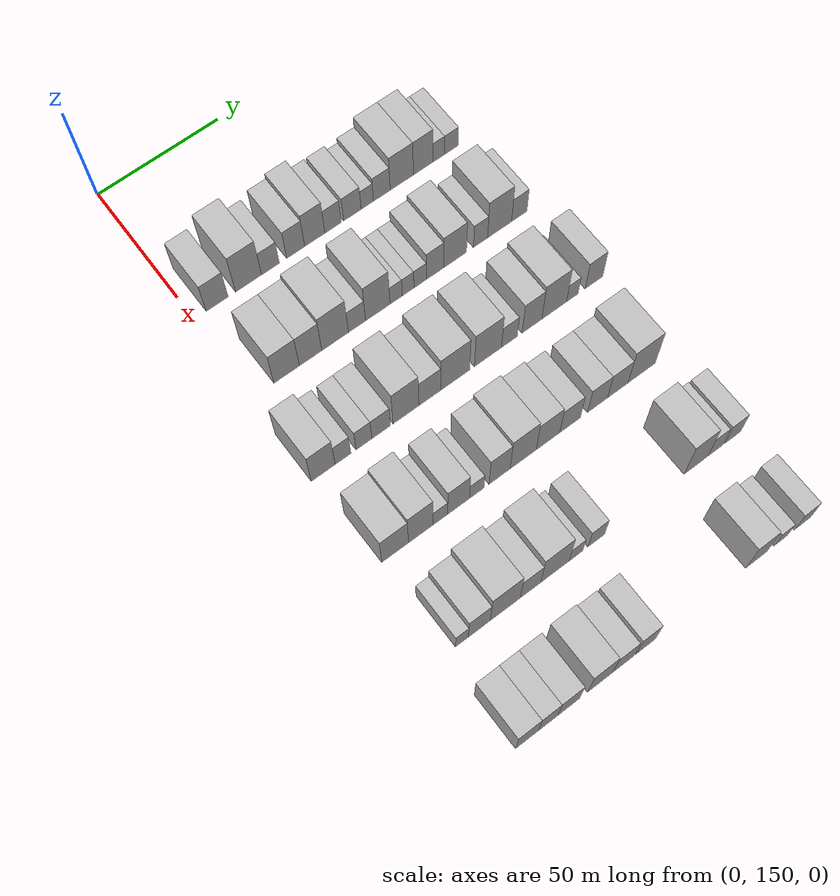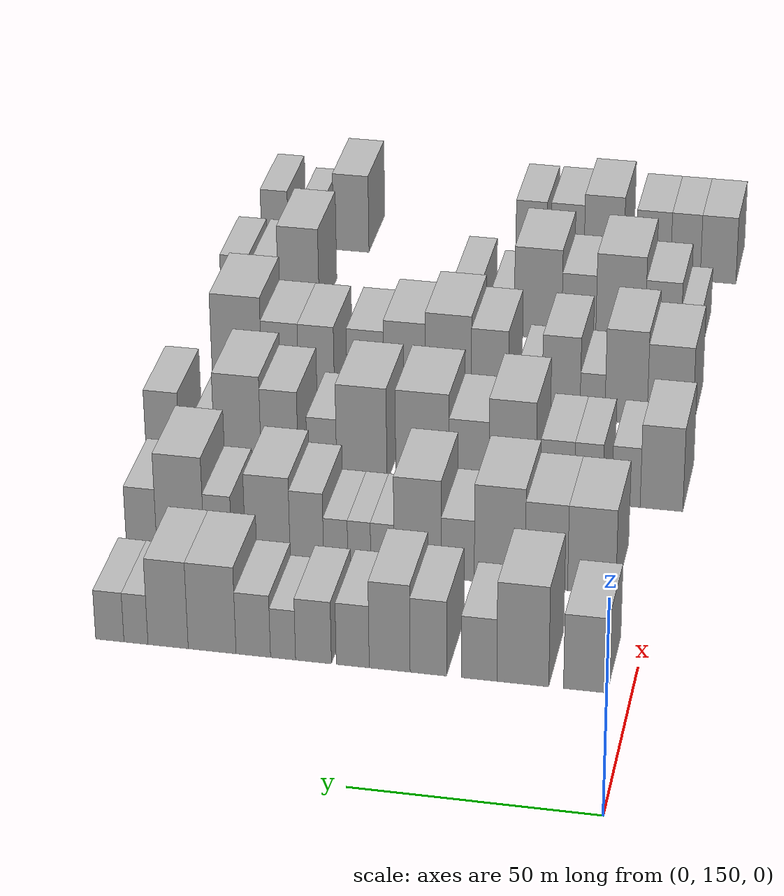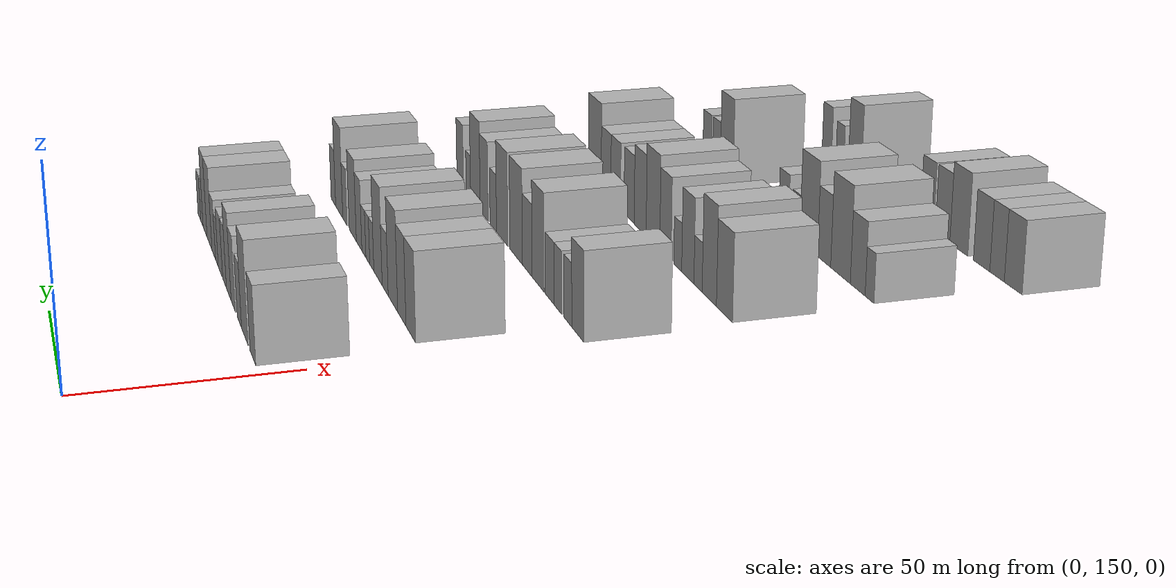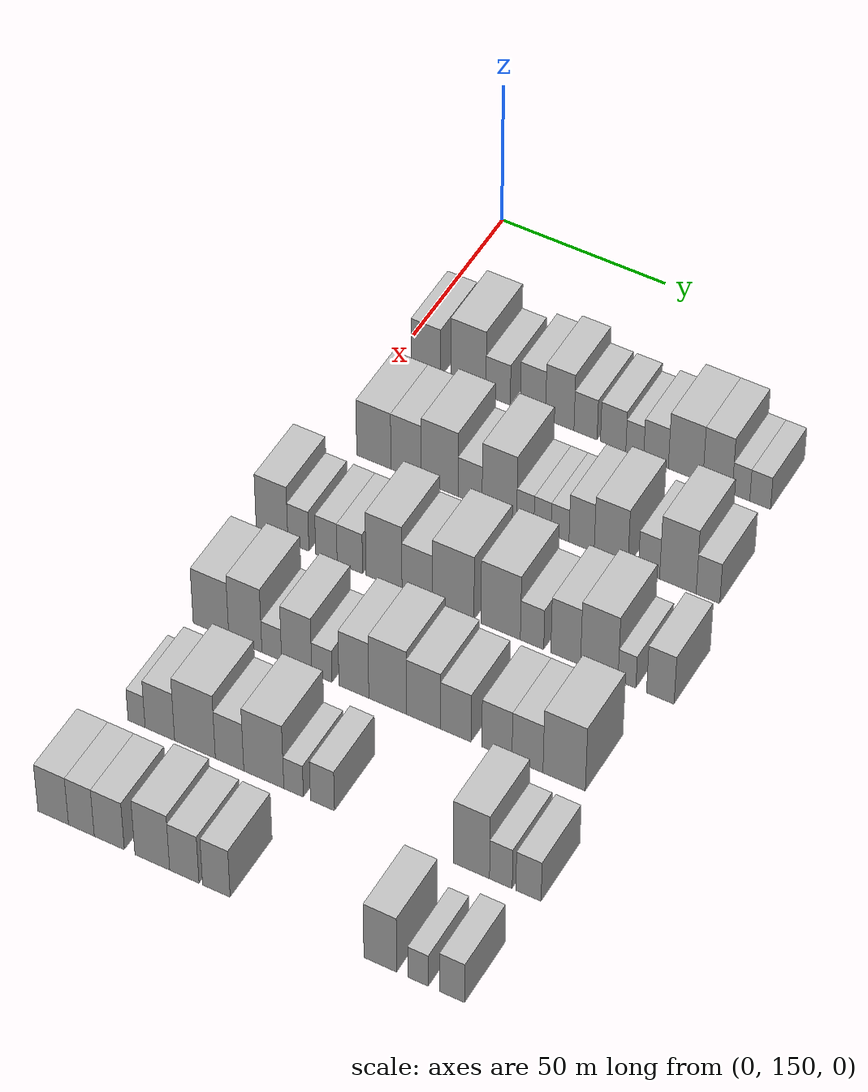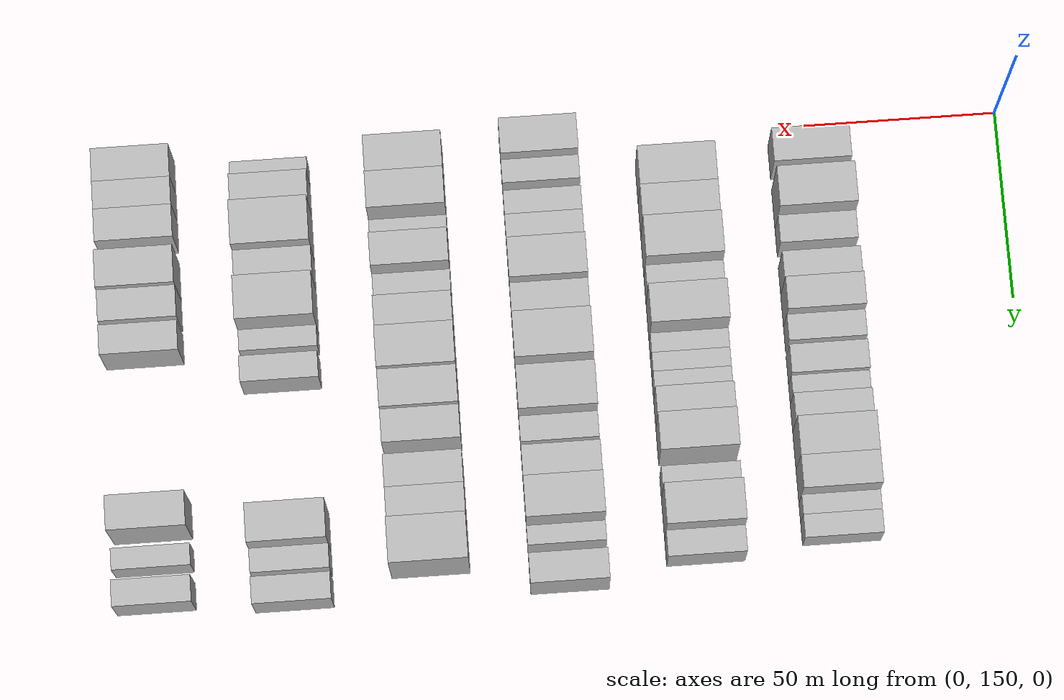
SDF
<sdf version="1.6">
 <world name="default">
  <model name="building_87">
   <static>1</static>
   <pose>50.0000 159.4352 0 0.000000 0.000000 0.000000</pose>
   <link name="link">
    <pose>0 0 9.00 0 0 0</pose>
    <collision name="collision"><geometry><box><size>20.0000 8.8607 18.0000</size></box></geometry></collision>
    <visual name="visual">
     <cast_shadows>0</cast_shadows>
     <geometry><box><size>20.0000 8.8607 18.0000</size></box></geometry>
     <material>
      <script>
       <uri>model://HANNAS_wall/materials/scripts</uri>
       <uri>model://HANNAS_wall/materials/textures</uri>
       <name>vrc/HANNAS_wall</name>
      </script>
     </material>
    </visual>
   </link>
  </model>
  <model name="building_88">
   <static>1</static>
   <pose>50.0000 172.1626 0 0.000000 0.000000 0.000000</pose>
   <link name="link">
    <pose>0 0 12.00 0 0 0</pose>
    <collision name="collision"><geometry><box><size>20.0000 10.5941 24.0000</size></box></geometry></collision>
    <visual name="visual">
     <cast_shadows>0</cast_shadows>
     <geometry><box><size>20.0000 10.5941 24.0000</size></box></geometry>
     <material>
      <script>
       <uri>model://HANNAS_wall/materials/scripts</uri>
       <uri>model://HANNAS_wall/materials/textures</uri>
       <name>vrc/HANNAS_wall</name>
      </script>
     </material>
    </visual>
   </link>
  </model>
  <model name="building_89">
   <static>1</static>
   <pose>50.0000 181.1078 0 0.000000 0.000000 0.000000</pose>
   <link name="link">
    <pose>0 0 7.50 0 0 0</pose>
    <collision name="collision"><geometry><box><size>20.0000 7.2964 15.0000</size></box></geometry></collision>
    <visual name="visual">
     <cast_shadows>0</cast_shadows>
     <geometry><box><size>20.0000 7.2964 15.0000</size></box></geometry>
     <material>
      <script>
       <uri>model://HANNAS_wall/materials/scripts</uri>
       <uri>model://HANNAS_wall/materials/textures</uri>
       <name>vrc/HANNAS_wall</name>
      </script>
     </material>
    </visual>
   </link>
  </model>
  <model name="building_90">
   <static>1</static>
   <pose>50.0000 191.5008 0 0.000000 0.000000 0.000000</pose>
   <link name="link">
    <pose>0 0 9.00 0 0 0</pose>
    <collision name="collision"><geometry><box><size>20.0000 7.4896 18.0000</size></box></geometry></collision>
    <visual name="visual">
     <cast_shadows>0</cast_shadows>
     <geometry><box><size>20.0000 7.4896 18.0000</size></box></geometry>
     <material>
      <script>
       <uri>model://HANNAS_wall/materials/scripts</uri>
       <uri>model://HANNAS_wall/materials/textures</uri>
       <name>vrc/HANNAS_wall</name>
      </script>
     </material>
    </visual>
   </link>
  </model>
  <model name="building_91">
   <static>1</static>
   <pose>50.0000 199.4698 0 0.000000 0.000000 0.000000</pose>
   <link name="link">
    <pose>0 0 10.50 0 0 0</pose>
    <collision name="collision"><geometry><box><size>20.0000 8.4484 21.0000</size></box></geometry></collision>
    <visual name="visual">
     <cast_shadows>0</cast_shadows>
     <geometry><box><size>20.0000 8.4484 21.0000</size></box></geometry>
     <material>
      <script>
       <uri>model://HANNAS_wall/materials/scripts</uri>
       <uri>model://HANNAS_wall/materials/textures</uri>
       <name>vrc/HANNAS_wall</name>
      </script>
     </material>
    </visual>
   </link>
  </model>
  <model name="building_92">
   <static>1</static>
   <pose>50.0000 207.1086 0 0.000000 0.000000 0.000000</pose>
   <link name="link">
    <pose>0 0 7.50 0 0 0</pose>
    <collision name="collision"><geometry><box><size>20.0000 6.8291 15.0000</size></box></geometry></collision>
    <visual name="visual">
     <cast_shadows>0</cast_shadows>
     <geometry><box><size>20.0000 6.8291 15.0000</size></box></geometry>
     <material>
      <script>
       <uri>model://HANNAS_wall/materials/scripts</uri>
       <uri>model://HANNAS_wall/materials/textures</uri>
       <name>vrc/HANNAS_wall</name>
      </script>
     </material>
    </visual>
   </link>
  </model>
  <model name="building_93">
   <static>1</static>
   <pose>50.0000 215.2515 0 0.000000 0.000000 0.000000</pose>
   <link name="link">
    <pose>0 0 7.50 0 0 0</pose>
    <collision name="collision"><geometry><box><size>20.0000 7.4567 15.0000</size></box></geometry></collision>
    <visual name="visual">
     <cast_shadows>0</cast_shadows>
     <geometry><box><size>20.0000 7.4567 15.0000</size></box></geometry>
     <material>
      <script>
       <uri>model://HANNAS_wall/materials/scripts</uri>
       <uri>model://HANNAS_wall/materials/textures</uri>
       <name>vrc/HANNAS_wall</name>
      </script>
     </material>
    </visual>
   </link>
  </model>
  <model name="building_94">
   <static>1</static>
   <pose>50.0000 221.5928 0 0.000000 0.000000 0.000000</pose>
   <link name="link">
    <pose>0 0 6.00 0 0 0</pose>
    <collision name="collision"><geometry><box><size>20.0000 5.2258 12.0000</size></box></geometry></collision>
    <visual name="visual">
     <cast_shadows>0</cast_shadows>
     <geometry><box><size>20.0000 5.2258 12.0000</size></box></geometry>
     <material>
      <script>
       <uri>model://HANNAS_wall/materials/scripts</uri>
       <uri>model://HANNAS_wall/materials/textures</uri>
       <name>vrc/HANNAS_wall</name>
      </script>
     </material>
    </visual>
   </link>
  </model>
  <model name="building_95">
   <static>1</static>
   <pose>50.0000 227.8062 0 0.000000 0.000000 0.000000</pose>
   <link name="link">
    <pose>0 0 7.50 0 0 0</pose>
    <collision name="collision"><geometry><box><size>20.0000 7.2010 15.0000</size></box></geometry></collision>
    <visual name="visual">
     <cast_shadows>0</cast_shadows>
     <geometry><box><size>20.0000 7.2010 15.0000</size></box></geometry>
     <material>
      <script>
       <uri>model://HANNAS_wall/materials/scripts</uri>
       <uri>model://HANNAS_wall/materials/textures</uri>
       <name>vrc/HANNAS_wall</name>
      </script>
     </material>
    </visual>
   </link>
  </model>
  <model name="building_96">
   <static>1</static>
   <pose>50.0000 236.4303 0 0.000000 0.000000 0.000000</pose>
   <link name="link">
    <pose>0 0 10.50 0 0 0</pose>
    <collision name="collision"><geometry><box><size>20.0000 10.0473 21.0000</size></box></geometry></collision>
    <visual name="visual">
     <cast_shadows>0</cast_shadows>
     <geometry><box><size>20.0000 10.0473 21.0000</size></box></geometry>
     <material>
      <script>
       <uri>model://HANNAS_wall/materials/scripts</uri>
       <uri>model://HANNAS_wall/materials/textures</uri>
       <name>vrc/HANNAS_wall</name>
      </script>
     </material>
    </visual>
   </link>
  </model>
  <model name="building_97">
   <static>1</static>
   <pose>50.0000 245.6946 0 0.000000 0.000000 0.000000</pose>
   <link name="link">
    <pose>0 0 10.50 0 0 0</pose>
    <collision name="collision"><geometry><box><size>20.0000 8.4812 21.0000</size></box></geometry></collision>
    <visual name="visual">
     <cast_shadows>0</cast_shadows>
     <geometry><box><size>20.0000 8.4812 21.0000</size></box></geometry>
     <material>
      <script>
       <uri>model://HANNAS_wall/materials/scripts</uri>
       <uri>model://HANNAS_wall/materials/textures</uri>
       <name>vrc/HANNAS_wall</name>
      </script>
     </material>
    </visual>
   </link>
  </model>
  <model name="building_98">
   <static>1</static>
   <pose>50.0000 252.4760 0 0.000000 0.000000 0.000000</pose>
   <link name="link">
    <pose>0 0 6.00 0 0 0</pose>
    <collision name="collision"><geometry><box><size>20.0000 5.0817 12.0000</size></box></geometry></collision>
    <visual name="visual">
     <cast_shadows>0</cast_shadows>
     <geometry><box><size>20.0000 5.0817 12.0000</size></box></geometry>
     <material>
      <script>
       <uri>model://HANNAS_wall/materials/scripts</uri>
       <uri>model://HANNAS_wall/materials/textures</uri>
       <name>vrc/HANNAS_wall</name>
      </script>
     </material>
    </visual>
   </link>
  </model>
  <model name="building_99">
   <static>1</static>
   <pose>50.0000 258.0063 0 0.000000 0.000000 0.000000</pose>
   <link name="link">
    <pose>0 0 6.00 0 0 0</pose>
    <collision name="collision"><geometry><box><size>20.0000 5.9790 12.0000</size></box></geometry></collision>
    <visual name="visual">
     <cast_shadows>0</cast_shadows>
     <geometry><box><size>20.0000 5.9790 12.0000</size></box></geometry>
     <material>
      <script>
       <uri>model://HANNAS_wall/materials/scripts</uri>
       <uri>model://HANNAS_wall/materials/textures</uri>
       <name>vrc/HANNAS_wall</name>
      </script>
     </material>
    </visual>
   </link>
  </model>
  <model name="building_216">
   <static>1</static>
   <pose>85.0000 163.2631 0 0.000000 0.000000 0.000000</pose>
   <link name="link">
    <pose>0 0 10.50 0 0 0</pose>
    <collision name="collision"><geometry><box><size>20.0000 10.2114 21.0000</size></box></geometry></collision>
    <visual name="visual">
     <cast_shadows>0</cast_shadows>
     <geometry><box><size>20.0000 10.2114 21.0000</size></box></geometry>
     <material>
      <script>
       <uri>model://HANNAS_wall/materials/scripts</uri>
       <uri>model://HANNAS_wall/materials/textures</uri>
       <name>vrc/HANNAS_wall</name>
      </script>
     </material>
    </visual>
   </link>
  </model>
  <model name="building_217">
   <static>1</static>
   <pose>85.0000 172.8873 0 0.000000 0.000000 0.000000</pose>
   <link name="link">
    <pose>0 0 10.50 0 0 0</pose>
    <collision name="collision"><geometry><box><size>20.0000 9.0369 21.0000</size></box></geometry></collision>
    <visual name="visual">
     <cast_shadows>0</cast_shadows>
     <geometry><box><size>20.0000 9.0369 21.0000</size></box></geometry>
     <material>
      <script>
       <uri>model://HANNAS_wall/materials/scripts</uri>
       <uri>model://HANNAS_wall/materials/textures</uri>
       <name>vrc/HANNAS_wall</name>
      </script>
     </material>
    </visual>
   </link>
  </model>
  <model name="building_218">
   <static>1</static>
   <pose>85.0000 182.8221 0 0.000000 0.000000 0.000000</pose>
   <link name="link">
    <pose>0 0 12.00 0 0 0</pose>
    <collision name="collision"><geometry><box><size>20.0000 10.8328 24.0000</size></box></geometry></collision>
    <visual name="visual">
     <cast_shadows>0</cast_shadows>
     <geometry><box><size>20.0000 10.8328 24.0000</size></box></geometry>
     <material>
      <script>
       <uri>model://HANNAS_wall/materials/scripts</uri>
       <uri>model://HANNAS_wall/materials/textures</uri>
       <name>vrc/HANNAS_wall</name>
      </script>
     </material>
    </visual>
   </link>
  </model>
  <model name="building_219">
   <static>1</static>
   <pose>85.0000 191.7666 0 0.000000 0.000000 0.000000</pose>
   <link name="link">
    <pose>0 0 7.50 0 0 0</pose>
    <collision name="collision"><geometry><box><size>20.0000 7.0562 15.0000</size></box></geometry></collision>
    <visual name="visual">
     <cast_shadows>0</cast_shadows>
     <geometry><box><size>20.0000 7.0562 15.0000</size></box></geometry>
     <material>
      <script>
       <uri>model://HANNAS_wall/materials/scripts</uri>
       <uri>model://HANNAS_wall/materials/textures</uri>
       <name>vrc/HANNAS_wall</name>
      </script>
     </material>
    </visual>
   </link>
  </model>
  <model name="building_220">
   <static>1</static>
   <pose>85.0000 200.3665 0 0.000000 0.000000 0.000000</pose>
   <link name="link">
    <pose>0 0 12.00 0 0 0</pose>
    <collision name="collision"><geometry><box><size>20.0000 10.1436 24.0000</size></box></geometry></collision>
    <visual name="visual">
     <cast_shadows>0</cast_shadows>
     <geometry><box><size>20.0000 10.1436 24.0000</size></box></geometry>
     <material>
      <script>
       <uri>model://HANNAS_wall/materials/scripts</uri>
       <uri>model://HANNAS_wall/materials/textures</uri>
       <name>vrc/HANNAS_wall</name>
      </script>
     </material>
    </visual>
   </link>
  </model>
  <model name="building_221">
   <static>1</static>
   <pose>85.0000 207.9617 0 0.000000 0.000000 0.000000</pose>
   <link name="link">
    <pose>0 0 6.00 0 0 0</pose>
    <collision name="collision"><geometry><box><size>20.0000 5.0468 12.0000</size></box></geometry></collision>
    <visual name="visual">
     <cast_shadows>0</cast_shadows>
     <geometry><box><size>20.0000 5.0468 12.0000</size></box></geometry>
     <material>
      <script>
       <uri>model://HANNAS_wall/materials/scripts</uri>
       <uri>model://HANNAS_wall/materials/textures</uri>
       <name>vrc/HANNAS_wall</name>
      </script>
     </material>
    </visual>
   </link>
  </model>
  <model name="building_222">
   <static>1</static>
   <pose>85.0000 212.9592 0 0.000000 0.000000 0.000000</pose>
   <link name="link">
    <pose>0 0 6.00 0 0 0</pose>
    <collision name="collision"><geometry><box><size>20.0000 4.9481 12.0000</size></box></geometry></collision>
    <visual name="visual">
     <cast_shadows>0</cast_shadows>
     <geometry><box><size>20.0000 4.9481 12.0000</size></box></geometry>
     <material>
      <script>
       <uri>model://HANNAS_wall/materials/scripts</uri>
       <uri>model://HANNAS_wall/materials/textures</uri>
       <name>vrc/HANNAS_wall</name>
      </script>
     </material>
    </visual>
   </link>
  </model>
  <model name="building_223">
   <static>1</static>
   <pose>85.0000 218.0493 0 0.000000 0.000000 0.000000</pose>
   <link name="link">
    <pose>0 0 6.00 0 0 0</pose>
    <collision name="collision"><geometry><box><size>20.0000 5.2320 12.0000</size></box></geometry></collision>
    <visual name="visual">
     <cast_shadows>0</cast_shadows>
     <geometry><box><size>20.0000 5.2320 12.0000</size></box></geometry>
     <material>
      <script>
       <uri>model://HANNAS_wall/materials/scripts</uri>
       <uri>model://HANNAS_wall/materials/textures</uri>
       <name>vrc/HANNAS_wall</name>
      </script>
     </material>
    </visual>
   </link>
  </model>
  <model name="building_224">
   <static>1</static>
   <pose>85.0000 224.3019 0 0.000000 0.000000 0.000000</pose>
   <link name="link">
    <pose>0 0 9.00 0 0 0</pose>
    <collision name="collision"><geometry><box><size>20.0000 7.2733 18.0000</size></box></geometry></collision>
    <visual name="visual">
     <cast_shadows>0</cast_shadows>
     <geometry><box><size>20.0000 7.2733 18.0000</size></box></geometry>
     <material>
      <script>
       <uri>model://HANNAS_wall/materials/scripts</uri>
       <uri>model://HANNAS_wall/materials/textures</uri>
       <name>vrc/HANNAS_wall</name>
      </script>
     </material>
    </visual>
   </link>
  </model>
  <model name="building_225">
   <static>1</static>
   <pose>85.0000 232.8008 0 0.000000 0.000000 0.000000</pose>
   <link name="link">
    <pose>0 0 10.50 0 0 0</pose>
    <collision name="collision"><geometry><box><size>20.0000 9.7244 21.0000</size></box></geometry></collision>
    <visual name="visual">
     <cast_shadows>0</cast_shadows>
     <geometry><box><size>20.0000 9.7244 21.0000</size></box></geometry>
     <material>
      <script>
       <uri>model://HANNAS_wall/materials/scripts</uri>
       <uri>model://HANNAS_wall/materials/textures</uri>
       <name>vrc/HANNAS_wall</name>
      </script>
     </material>
    </visual>
   </link>
  </model>
  <model name="building_226">
   <static>1</static>
   <pose>85.0000 243.6888 0 0.000000 0.000000 0.000000</pose>
   <link name="link">
    <pose>0 0 7.50 0 0 0</pose>
    <collision name="collision"><geometry><box><size>20.0000 6.0515 15.0000</size></box></geometry></collision>
    <visual name="visual">
     <cast_shadows>0</cast_shadows>
     <geometry><box><size>20.0000 6.0515 15.0000</size></box></geometry>
     <material>
      <script>
       <uri>model://HANNAS_wall/materials/scripts</uri>
       <uri>model://HANNAS_wall/materials/textures</uri>
       <name>vrc/HANNAS_wall</name>
      </script>
     </material>
    </visual>
   </link>
  </model>
  <model name="building_227">
   <static>1</static>
   <pose>85.0000 251.9386 0 0.000000 0.000000 0.000000</pose>
   <link name="link">
    <pose>0 0 12.00 0 0 0</pose>
    <collision name="collision"><geometry><box><size>20.0000 10.4483 24.0000</size></box></geometry></collision>
    <visual name="visual">
     <cast_shadows>0</cast_shadows>
     <geometry><box><size>20.0000 10.4483 24.0000</size></box></geometry>
     <material>
      <script>
       <uri>model://HANNAS_wall/materials/scripts</uri>
       <uri>model://HANNAS_wall/materials/textures</uri>
       <name>vrc/HANNAS_wall</name>
      </script>
     </material>
    </visual>
   </link>
  </model>
  <model name="building_228">
   <static>1</static>
   <pose>85.0000 260.5170 0 0.000000 0.000000 0.000000</pose>
   <link name="link">
    <pose>0 0 7.50 0 0 0</pose>
    <collision name="collision"><geometry><box><size>20.0000 6.7085 15.0000</size></box></geometry></collision>
    <visual name="visual">
     <cast_shadows>0</cast_shadows>
     <geometry><box><size>20.0000 6.7085 15.0000</size></box></geometry>
     <material>
      <script>
       <uri>model://HANNAS_wall/materials/scripts</uri>
       <uri>model://HANNAS_wall/materials/textures</uri>
       <name>vrc/HANNAS_wall</name>
      </script>
     </material>
    </visual>
   </link>
  </model>
  <model name="building_347">
   <static>1</static>
   <pose>120.0000 153.0045 0 0.000000 0.000000 0.000000</pose>
   <link name="link">
    <pose>0 0 10.50 0 0 0</pose>
    <collision name="collision"><geometry><box><size>20.0000 9.3803 21.0000</size></box></geometry></collision>
    <visual name="visual">
     <cast_shadows>0</cast_shadows>
     <geometry><box><size>20.0000 9.3803 21.0000</size></box></geometry>
     <material>
      <script>
       <uri>model://HANNAS_wall/materials/scripts</uri>
       <uri>model://HANNAS_wall/materials/textures</uri>
       <name>vrc/HANNAS_wall</name>
      </script>
     </material>
    </visual>
   </link>
  </model>
  <model name="building_348">
   <static>1</static>
   <pose>120.0000 160.8081 0 0.000000 0.000000 0.000000</pose>
   <link name="link">
    <pose>0 0 7.50 0 0 0</pose>
    <collision name="collision"><geometry><box><size>20.0000 6.2269 15.0000</size></box></geometry></collision>
    <visual name="visual">
     <cast_shadows>0</cast_shadows>
     <geometry><box><size>20.0000 6.2269 15.0000</size></box></geometry>
     <material>
      <script>
       <uri>model://HANNAS_wall/materials/scripts</uri>
       <uri>model://HANNAS_wall/materials/textures</uri>
       <name>vrc/HANNAS_wall</name>
      </script>
     </material>
    </visual>
   </link>
  </model>
  <model name="building_349">
   <static>1</static>
   <pose>120.0000 169.0744 0 0.000000 0.000000 0.000000</pose>
   <link name="link">
    <pose>0 0 7.50 0 0 0</pose>
    <collision name="collision"><geometry><box><size>20.0000 6.3058 15.0000</size></box></geometry></collision>
    <visual name="visual">
     <cast_shadows>0</cast_shadows>
     <geometry><box><size>20.0000 6.3058 15.0000</size></box></geometry>
     <material>
      <script>
       <uri>model://HANNAS_wall/materials/scripts</uri>
       <uri>model://HANNAS_wall/materials/textures</uri>
       <name>vrc/HANNAS_wall</name>
      </script>
     </material>
    </visual>
   </link>
  </model>
  <model name="building_350">
   <static>1</static>
   <pose>120.0000 175.9626 0 0.000000 0.000000 0.000000</pose>
   <link name="link">
    <pose>0 0 7.50 0 0 0</pose>
    <collision name="collision"><geometry><box><size>20.0000 7.4707 15.0000</size></box></geometry></collision>
    <visual name="visual">
     <cast_shadows>0</cast_shadows>
     <geometry><box><size>20.0000 7.4707 15.0000</size></box></geometry>
     <material>
      <script>
       <uri>model://HANNAS_wall/materials/scripts</uri>
       <uri>model://HANNAS_wall/materials/textures</uri>
       <name>vrc/HANNAS_wall</name>
      </script>
     </material>
    </visual>
   </link>
  </model>
  <model name="building_351">
   <static>1</static>
   <pose>120.0000 185.9377 0 0.000000 0.000000 0.000000</pose>
   <link name="link">
    <pose>0 0 12.00 0 0 0</pose>
    <collision name="collision"><geometry><box><size>20.0000 10.4794 24.0000</size></box></geometry></collision>
    <visual name="visual">
     <cast_shadows>0</cast_shadows>
     <geometry><box><size>20.0000 10.4794 24.0000</size></box></geometry>
     <material>
      <script>
       <uri>model://HANNAS_wall/materials/scripts</uri>
       <uri>model://HANNAS_wall/materials/textures</uri>
       <name>vrc/HANNAS_wall</name>
      </script>
     </material>
    </visual>
   </link>
  </model>
  <model name="building_352">
   <static>1</static>
   <pose>120.0000 195.6011 0 0.000000 0.000000 0.000000</pose>
   <link name="link">
    <pose>0 0 9.00 0 0 0</pose>
    <collision name="collision"><geometry><box><size>20.0000 8.8476 18.0000</size></box></geometry></collision>
    <visual name="visual">
     <cast_shadows>0</cast_shadows>
     <geometry><box><size>20.0000 8.8476 18.0000</size></box></geometry>
     <material>
      <script>
       <uri>model://HANNAS_wall/materials/scripts</uri>
       <uri>model://HANNAS_wall/materials/textures</uri>
       <name>vrc/HANNAS_wall</name>
      </script>
     </material>
    </visual>
   </link>
  </model>
  <model name="building_353">
   <static>1</static>
   <pose>120.0000 205.9927 0 0.000000 0.000000 0.000000</pose>
   <link name="link">
    <pose>0 0 12.00 0 0 0</pose>
    <collision name="collision"><geometry><box><size>20.0000 11.9356 24.0000</size></box></geometry></collision>
    <visual name="visual">
     <cast_shadows>0</cast_shadows>
     <geometry><box><size>20.0000 11.9356 24.0000</size></box></geometry>
     <material>
      <script>
       <uri>model://HANNAS_wall/materials/scripts</uri>
       <uri>model://HANNAS_wall/materials/textures</uri>
       <name>vrc/HANNAS_wall</name>
      </script>
     </material>
    </visual>
   </link>
  </model>
  <model name="building_354">
   <static>1</static>
   <pose>120.0000 219.6166 0 0.000000 0.000000 0.000000</pose>
   <link name="link">
    <pose>0 0 12.00 0 0 0</pose>
    <collision name="collision"><geometry><box><size>20.0000 11.3123 24.0000</size></box></geometry></collision>
    <visual name="visual">
     <cast_shadows>0</cast_shadows>
     <geometry><box><size>20.0000 11.3123 24.0000</size></box></geometry>
     <material>
      <script>
       <uri>model://HANNAS_wall/materials/scripts</uri>
       <uri>model://HANNAS_wall/materials/textures</uri>
       <name>vrc/HANNAS_wall</name>
      </script>
     </material>
    </visual>
   </link>
  </model>
  <model name="building_355">
   <static>1</static>
   <pose>120.0000 228.6077 0 0.000000 0.000000 0.000000</pose>
   <link name="link">
    <pose>0 0 7.50 0 0 0</pose>
    <collision name="collision"><geometry><box><size>20.0000 6.6699 15.0000</size></box></geometry></collision>
    <visual name="visual">
     <cast_shadows>0</cast_shadows>
     <geometry><box><size>20.0000 6.6699 15.0000</size></box></geometry>
     <material>
      <script>
       <uri>model://HANNAS_wall/materials/scripts</uri>
       <uri>model://HANNAS_wall/materials/textures</uri>
       <name>vrc/HANNAS_wall</name>
      </script>
     </material>
    </visual>
   </link>
  </model>
  <model name="building_356">
   <static>1</static>
   <pose>120.0000 238.1474 0 0.000000 0.000000 0.000000</pose>
   <link name="link">
    <pose>0 0 10.50 0 0 0</pose>
    <collision name="collision"><geometry><box><size>20.0000 8.4095 21.0000</size></box></geometry></collision>
    <visual name="visual">
     <cast_shadows>0</cast_shadows>
     <geometry><box><size>20.0000 8.4095 21.0000</size></box></geometry>
     <material>
      <script>
       <uri>model://HANNAS_wall/materials/scripts</uri>
       <uri>model://HANNAS_wall/materials/textures</uri>
       <name>vrc/HANNAS_wall</name>
      </script>
     </material>
    </visual>
   </link>
  </model>
  <model name="building_357">
   <static>1</static>
   <pose>120.0000 247.6490 0 0.000000 0.000000 0.000000</pose>
   <link name="link">
    <pose>0 0 12.00 0 0 0</pose>
    <collision name="collision"><geometry><box><size>20.0000 10.5937 24.0000</size></box></geometry></collision>
    <visual name="visual">
     <cast_shadows>0</cast_shadows>
     <geometry><box><size>20.0000 10.5937 24.0000</size></box></geometry>
     <material>
      <script>
       <uri>model://HANNAS_wall/materials/scripts</uri>
       <uri>model://HANNAS_wall/materials/textures</uri>
       <name>vrc/HANNAS_wall</name>
      </script>
     </material>
    </visual>
   </link>
  </model>
  <model name="building_358">
   <static>1</static>
   <pose>120.0000 255.4540 0 0.000000 0.000000 0.000000</pose>
   <link name="link">
    <pose>0 0 6.00 0 0 0</pose>
    <collision name="collision"><geometry><box><size>20.0000 5.0163 12.0000</size></box></geometry></collision>
    <visual name="visual">
     <cast_shadows>0</cast_shadows>
     <geometry><box><size>20.0000 5.0163 12.0000</size></box></geometry>
     <material>
      <script>
       <uri>model://HANNAS_wall/materials/scripts</uri>
       <uri>model://HANNAS_wall/materials/textures</uri>
       <name>vrc/HANNAS_wall</name>
      </script>
     </material>
    </visual>
   </link>
  </model>
  <model name="building_359">
   <static>1</static>
   <pose>120.0000 264.8081 0 0.000000 0.000000 0.000000</pose>
   <link name="link">
    <pose>0 0 9.00 0 0 0</pose>
    <collision name="collision"><geometry><box><size>20.0000 7.6920 18.0000</size></box></geometry></collision>
    <visual name="visual">
     <cast_shadows>0</cast_shadows>
     <geometry><box><size>20.0000 7.6920 18.0000</size></box></geometry>
     <material>
      <script>
       <uri>model://HANNAS_wall/materials/scripts</uri>
       <uri>model://HANNAS_wall/materials/textures</uri>
       <name>vrc/HANNAS_wall</name>
      </script>
     </material>
    </visual>
   </link>
  </model>
  <model name="building_479">
   <static>1</static>
   <pose>155.0000 155.5873 0 0.000000 0.000000 0.000000</pose>
   <link name="link">
    <pose>0 0 10.50 0 0 0</pose>
    <collision name="collision"><geometry><box><size>20.0000 10.4315 21.0000</size></box></geometry></collision>
    <visual name="visual">
     <cast_shadows>0</cast_shadows>
     <geometry><box><size>20.0000 10.4315 21.0000</size></box></geometry>
     <material>
      <script>
       <uri>model://HANNAS_wall/materials/scripts</uri>
       <uri>model://HANNAS_wall/materials/textures</uri>
       <name>vrc/HANNAS_wall</name>
      </script>
     </material>
    </visual>
   </link>
  </model>
  <model name="building_480">
   <static>1</static>
   <pose>155.0000 165.6293 0 0.000000 0.000000 0.000000</pose>
   <link name="link">
    <pose>0 0 12.00 0 0 0</pose>
    <collision name="collision"><geometry><box><size>20.0000 9.6525 24.0000</size></box></geometry></collision>
    <visual name="visual">
     <cast_shadows>0</cast_shadows>
     <geometry><box><size>20.0000 9.6525 24.0000</size></box></geometry>
     <material>
      <script>
       <uri>model://HANNAS_wall/materials/scripts</uri>
       <uri>model://HANNAS_wall/materials/textures</uri>
       <name>vrc/HANNAS_wall</name>
      </script>
     </material>
    </visual>
   </link>
  </model>
  <model name="building_481">
   <static>1</static>
   <pose>155.0000 173.3126 0 0.000000 0.000000 0.000000</pose>
   <link name="link">
    <pose>0 0 6.00 0 0 0</pose>
    <collision name="collision"><geometry><box><size>20.0000 5.7141 12.0000</size></box></geometry></collision>
    <visual name="visual">
     <cast_shadows>0</cast_shadows>
     <geometry><box><size>20.0000 5.7141 12.0000</size></box></geometry>
     <material>
      <script>
       <uri>model://HANNAS_wall/materials/scripts</uri>
       <uri>model://HANNAS_wall/materials/textures</uri>
       <name>vrc/HANNAS_wall</name>
      </script>
     </material>
    </visual>
   </link>
  </model>
  <model name="building_482">
   <static>1</static>
   <pose>155.0000 180.5376 0 0.000000 0.000000 0.000000</pose>
   <link name="link">
    <pose>0 0 10.50 0 0 0</pose>
    <collision name="collision"><geometry><box><size>20.0000 8.7359 21.0000</size></box></geometry></collision>
    <visual name="visual">
     <cast_shadows>0</cast_shadows>
     <geometry><box><size>20.0000 8.7359 21.0000</size></box></geometry>
     <material>
      <script>
       <uri>model://HANNAS_wall/materials/scripts</uri>
       <uri>model://HANNAS_wall/materials/textures</uri>
       <name>vrc/HANNAS_wall</name>
      </script>
     </material>
    </visual>
   </link>
  </model>
  <model name="building_483">
   <static>1</static>
   <pose>155.0000 187.8152 0 0.000000 0.000000 0.000000</pose>
   <link name="link">
    <pose>0 0 6.00 0 0 0</pose>
    <collision name="collision"><geometry><box><size>20.0000 5.8194 12.0000</size></box></geometry></collision>
    <visual name="visual">
     <cast_shadows>0</cast_shadows>
     <geometry><box><size>20.0000 5.8194 12.0000</size></box></geometry>
     <material>
      <script>
       <uri>model://HANNAS_wall/materials/scripts</uri>
       <uri>model://HANNAS_wall/materials/textures</uri>
       <name>vrc/HANNAS_wall</name>
      </script>
     </material>
    </visual>
   </link>
  </model>
  <model name="building_484">
   <static>1</static>
   <pose>155.0000 196.9917 0 0.000000 0.000000 0.000000</pose>
   <link name="link">
    <pose>0 0 10.50 0 0 0</pose>
    <collision name="collision"><geometry><box><size>20.0000 8.5335 21.0000</size></box></geometry></collision>
    <visual name="visual">
     <cast_shadows>0</cast_shadows>
     <geometry><box><size>20.0000 8.5335 21.0000</size></box></geometry>
     <material>
      <script>
       <uri>model://HANNAS_wall/materials/scripts</uri>
       <uri>model://HANNAS_wall/materials/textures</uri>
       <name>vrc/HANNAS_wall</name>
      </script>
     </material>
    </visual>
   </link>
  </model>
  <model name="building_485">
   <static>1</static>
   <pose>155.0000 206.6152 0 0.000000 0.000000 0.000000</pose>
   <link name="link">
    <pose>0 0 12.00 0 0 0</pose>
    <collision name="collision"><geometry><box><size>20.0000 10.7136 24.0000</size></box></geometry></collision>
    <visual name="visual">
     <cast_shadows>0</cast_shadows>
     <geometry><box><size>20.0000 10.7136 24.0000</size></box></geometry>
     <material>
      <script>
       <uri>model://HANNAS_wall/materials/scripts</uri>
       <uri>model://HANNAS_wall/materials/textures</uri>
       <name>vrc/HANNAS_wall</name>
      </script>
     </material>
    </visual>
   </link>
  </model>
  <model name="building_486">
   <static>1</static>
   <pose>155.0000 216.8168 0 0.000000 0.000000 0.000000</pose>
   <link name="link">
    <pose>0 0 10.50 0 0 0</pose>
    <collision name="collision"><geometry><box><size>20.0000 9.6896 21.0000</size></box></geometry></collision>
    <visual name="visual">
     <cast_shadows>0</cast_shadows>
     <geometry><box><size>20.0000 9.6896 21.0000</size></box></geometry>
     <material>
      <script>
       <uri>model://HANNAS_wall/materials/scripts</uri>
       <uri>model://HANNAS_wall/materials/textures</uri>
       <name>vrc/HANNAS_wall</name>
      </script>
     </material>
    </visual>
   </link>
  </model>
  <model name="building_487">
   <static>1</static>
   <pose>155.0000 225.9550 0 0.000000 0.000000 0.000000</pose>
   <link name="link">
    <pose>0 0 9.00 0 0 0</pose>
    <collision name="collision"><geometry><box><size>20.0000 8.5868 18.0000</size></box></geometry></collision>
    <visual name="visual">
     <cast_shadows>0</cast_shadows>
     <geometry><box><size>20.0000 8.5868 18.0000</size></box></geometry>
     <material>
      <script>
       <uri>model://HANNAS_wall/materials/scripts</uri>
       <uri>model://HANNAS_wall/materials/textures</uri>
       <name>vrc/HANNAS_wall</name>
      </script>
     </material>
    </visual>
   </link>
  </model>
  <model name="building_488">
   <static>1</static>
   <pose>155.0000 237.4658 0 0.000000 0.000000 0.000000</pose>
   <link name="link">
    <pose>0 0 9.00 0 0 0</pose>
    <collision name="collision"><geometry><box><size>20.0000 8.4349 18.0000</size></box></geometry></collision>
    <visual name="visual">
     <cast_shadows>0</cast_shadows>
     <geometry><box><size>20.0000 8.4349 18.0000</size></box></geometry>
     <material>
      <script>
       <uri>model://HANNAS_wall/materials/scripts</uri>
       <uri>model://HANNAS_wall/materials/textures</uri>
       <name>vrc/HANNAS_wall</name>
      </script>
     </material>
    </visual>
   </link>
  </model>
  <model name="building_489">
   <static>1</static>
   <pose>155.0000 246.0072 0 0.000000 0.000000 0.000000</pose>
   <link name="link">
    <pose>0 0 9.00 0 0 0</pose>
    <collision name="collision"><geometry><box><size>20.0000 8.6479 18.0000</size></box></geometry></collision>
    <visual name="visual">
     <cast_shadows>0</cast_shadows>
     <geometry><box><size>20.0000 8.6479 18.0000</size></box></geometry>
     <material>
      <script>
       <uri>model://HANNAS_wall/materials/scripts</uri>
       <uri>model://HANNAS_wall/materials/textures</uri>
       <name>vrc/HANNAS_wall</name>
      </script>
     </material>
    </visual>
   </link>
  </model>
  <model name="building_490">
   <static>1</static>
   <pose>155.0000 256.2039 0 0.000000 0.000000 0.000000</pose>
   <link name="link">
    <pose>0 0 12.00 0 0 0</pose>
    <collision name="collision"><geometry><box><size>20.0000 11.7455 24.0000</size></box></geometry></collision>
    <visual name="visual">
     <cast_shadows>0</cast_shadows>
     <geometry><box><size>20.0000 11.7455 24.0000</size></box></geometry>
     <material>
      <script>
       <uri>model://HANNAS_wall/materials/scripts</uri>
       <uri>model://HANNAS_wall/materials/textures</uri>
       <name>vrc/HANNAS_wall</name>
      </script>
     </material>
    </visual>
   </link>
  </model>
  <model name="building_608">
   <static>1</static>
   <pose>190.0000 154.9593 0 0.000000 0.000000 0.000000</pose>
   <link name="link">
    <pose>0 0 6.00 0 0 0</pose>
    <collision name="collision"><geometry><box><size>20.0000 4.9291 12.0000</size></box></geometry></collision>
    <visual name="visual">
     <cast_shadows>0</cast_shadows>
     <geometry><box><size>20.0000 4.9291 12.0000</size></box></geometry>
     <material>
      <script>
       <uri>model://HANNAS_wall/materials/scripts</uri>
       <uri>model://HANNAS_wall/materials/textures</uri>
       <name>vrc/HANNAS_wall</name>
      </script>
     </material>
    </visual>
   </link>
  </model>
  <model name="building_609">
   <static>1</static>
   <pose>190.0000 161.6840 0 0.000000 0.000000 0.000000</pose>
   <link name="link">
    <pose>0 0 9.00 0 0 0</pose>
    <collision name="collision"><geometry><box><size>20.0000 8.5203 18.0000</size></box></geometry></collision>
    <visual name="visual">
     <cast_shadows>0</cast_shadows>
     <geometry><box><size>20.0000 8.5203 18.0000</size></box></geometry>
     <material>
      <script>
       <uri>model://HANNAS_wall/materials/scripts</uri>
       <uri>model://HANNAS_wall/materials/textures</uri>
       <name>vrc/HANNAS_wall</name>
      </script>
     </material>
    </visual>
   </link>
  </model>
  <model name="building_610">
   <static>1</static>
   <pose>190.0000 171.7864 0 0.000000 0.000000 0.000000</pose>
   <link name="link">
    <pose>0 0 12.00 0 0 0</pose>
    <collision name="collision"><geometry><box><size>20.0000 11.6845 24.0000</size></box></geometry></collision>
    <visual name="visual">
     <cast_shadows>0</cast_shadows>
     <geometry><box><size>20.0000 11.6845 24.0000</size></box></geometry>
     <material>
      <script>
       <uri>model://HANNAS_wall/materials/scripts</uri>
       <uri>model://HANNAS_wall/materials/textures</uri>
       <name>vrc/HANNAS_wall</name>
      </script>
     </material>
    </visual>
   </link>
  </model>
  <model name="building_611">
   <static>1</static>
   <pose>190.0000 181.6947 0 0.000000 0.000000 0.000000</pose>
   <link name="link">
    <pose>0 0 9.00 0 0 0</pose>
    <collision name="collision"><geometry><box><size>20.0000 8.1322 18.0000</size></box></geometry></collision>
    <visual name="visual">
     <cast_shadows>0</cast_shadows>
     <geometry><box><size>20.0000 8.1322 18.0000</size></box></geometry>
     <material>
      <script>
       <uri>model://HANNAS_wall/materials/scripts</uri>
       <uri>model://HANNAS_wall/materials/textures</uri>
       <name>vrc/HANNAS_wall</name>
      </script>
     </material>
    </visual>
   </link>
  </model>
  <model name="building_612">
   <static>1</static>
   <pose>190.0000 191.4419 0 0.000000 0.000000 0.000000</pose>
   <link name="link">
    <pose>0 0 12.00 0 0 0</pose>
    <collision name="collision"><geometry><box><size>20.0000 11.3621 24.0000</size></box></geometry></collision>
    <visual name="visual">
     <cast_shadows>0</cast_shadows>
     <geometry><box><size>20.0000 11.3621 24.0000</size></box></geometry>
     <material>
      <script>
       <uri>model://HANNAS_wall/materials/scripts</uri>
       <uri>model://HANNAS_wall/materials/textures</uri>
       <name>vrc/HANNAS_wall</name>
      </script>
     </material>
    </visual>
   </link>
  </model>
  <model name="building_613">
   <static>1</static>
   <pose>190.0000 199.8836 0 0.000000 0.000000 0.000000</pose>
   <link name="link">
    <pose>0 0 6.00 0 0 0</pose>
    <collision name="collision"><geometry><box><size>20.0000 5.5212 12.0000</size></box></geometry></collision>
    <visual name="visual">
     <cast_shadows>0</cast_shadows>
     <geometry><box><size>20.0000 5.5212 12.0000</size></box></geometry>
     <material>
      <script>
       <uri>model://HANNAS_wall/materials/scripts</uri>
       <uri>model://HANNAS_wall/materials/textures</uri>
       <name>vrc/HANNAS_wall</name>
      </script>
     </material>
    </visual>
   </link>
  </model>
  <model name="building_614">
   <static>1</static>
   <pose>190.0000 208.0310 0 0.000000 0.000000 0.000000</pose>
   <link name="link">
    <pose>0 0 7.50 0 0 0</pose>
    <collision name="collision"><geometry><box><size>20.0000 6.7738 15.0000</size></box></geometry></collision>
    <visual name="visual">
     <cast_shadows>0</cast_shadows>
     <geometry><box><size>20.0000 6.7738 15.0000</size></box></geometry>
     <material>
      <script>
       <uri>model://HANNAS_wall/materials/scripts</uri>
       <uri>model://HANNAS_wall/materials/textures</uri>
       <name>vrc/HANNAS_wall</name>
      </script>
     </material>
    </visual>
   </link>
  </model>
  <model name="building_615">
   <static>1</static>
   <pose>190.0000 249.3814 0 0.000000 0.000000 0.000000</pose>
   <link name="link">
    <pose>0 0 12.00 0 0 0</pose>
    <collision name="collision"><geometry><box><size>20.0000 9.9757 24.0000</size></box></geometry></collision>
    <visual name="visual">
     <cast_shadows>0</cast_shadows>
     <geometry><box><size>20.0000 9.9757 24.0000</size></box></geometry>
     <material>
      <script>
       <uri>model://HANNAS_wall/materials/scripts</uri>
       <uri>model://HANNAS_wall/materials/textures</uri>
       <name>vrc/HANNAS_wall</name>
      </script>
     </material>
    </visual>
   </link>
  </model>
  <model name="building_616">
   <static>1</static>
   <pose>190.0000 257.4687 0 0.000000 0.000000 0.000000</pose>
   <link name="link">
    <pose>0 0 7.50 0 0 0</pose>
    <collision name="collision"><geometry><box><size>20.0000 6.1990 15.0000</size></box></geometry></collision>
    <visual name="visual">
     <cast_shadows>0</cast_shadows>
     <geometry><box><size>20.0000 6.1990 15.0000</size></box></geometry>
     <material>
      <script>
       <uri>model://HANNAS_wall/materials/scripts</uri>
       <uri>model://HANNAS_wall/materials/textures</uri>
       <name>vrc/HANNAS_wall</name>
      </script>
     </material>
    </visual>
   </link>
  </model>
  <model name="building_617">
   <static>1</static>
   <pose>190.0000 265.0083 0 0.000000 0.000000 0.000000</pose>
   <link name="link">
    <pose>0 0 7.50 0 0 0</pose>
    <collision name="collision"><geometry><box><size>20.0000 6.8802 15.0000</size></box></geometry></collision>
    <visual name="visual">
     <cast_shadows>0</cast_shadows>
     <geometry><box><size>20.0000 6.8802 15.0000</size></box></geometry>
     <material>
      <script>
       <uri>model://HANNAS_wall/materials/scripts</uri>
       <uri>model://HANNAS_wall/materials/textures</uri>
       <name>vrc/HANNAS_wall</name>
      </script>
     </material>
    </visual>
   </link>
  </model>
  <model name="building_735">
   <static>1</static>
   <pose>225.0000 152.5254 0 0.000000 0.000000 0.000000</pose>
   <link name="link">
    <pose>0 0 9.00 0 0 0</pose>
    <collision name="collision"><geometry><box><size>20.0000 8.7495 18.0000</size></box></geometry></collision>
    <visual name="visual">
     <cast_shadows>0</cast_shadows>
     <geometry><box><size>20.0000 8.7495 18.0000</size></box></geometry>
     <material>
      <script>
       <uri>model://HANNAS_wall/materials/scripts</uri>
       <uri>model://HANNAS_wall/materials/textures</uri>
       <name>vrc/HANNAS_wall</name>
      </script>
     </material>
    </visual>
   </link>
  </model>
  <model name="building_736">
   <static>1</static>
   <pose>225.0000 160.5744 0 0.000000 0.000000 0.000000</pose>
   <link name="link">
    <pose>0 0 9.00 0 0 0</pose>
    <collision name="collision"><geometry><box><size>20.0000 7.3486 18.0000</size></box></geometry></collision>
    <visual name="visual">
     <cast_shadows>0</cast_shadows>
     <geometry><box><size>20.0000 7.3486 18.0000</size></box></geometry>
     <material>
      <script>
       <uri>model://HANNAS_wall/materials/scripts</uri>
       <uri>model://HANNAS_wall/materials/textures</uri>
       <name>vrc/HANNAS_wall</name>
      </script>
     </material>
    </visual>
   </link>
  </model>
  <model name="building_737">
   <static>1</static>
   <pose>225.0000 168.5232 0 0.000000 0.000000 0.000000</pose>
   <link name="link">
    <pose>0 0 9.00 0 0 0</pose>
    <collision name="collision"><geometry><box><size>20.0000 8.5489 18.0000</size></box></geometry></collision>
    <visual name="visual">
     <cast_shadows>0</cast_shadows>
     <geometry><box><size>20.0000 8.5489 18.0000</size></box></geometry>
     <material>
      <script>
       <uri>model://HANNAS_wall/materials/scripts</uri>
       <uri>model://HANNAS_wall/materials/textures</uri>
       <name>vrc/HANNAS_wall</name>
      </script>
     </material>
    </visual>
   </link>
  </model>
  <model name="building_738">
   <static>1</static>
   <pose>225.0000 180.7052 0 0.000000 0.000000 0.000000</pose>
   <link name="link">
    <pose>0 0 10.50 0 0 0</pose>
    <collision name="collision"><geometry><box><size>20.0000 9.8151 21.0000</size></box></geometry></collision>
    <visual name="visual">
     <cast_shadows>0</cast_shadows>
     <geometry><box><size>20.0000 9.8151 21.0000</size></box></geometry>
     <material>
      <script>
       <uri>model://HANNAS_wall/materials/scripts</uri>
       <uri>model://HANNAS_wall/materials/textures</uri>
       <name>vrc/HANNAS_wall</name>
      </script>
     </material>
    </visual>
   </link>
  </model>
  <model name="building_739">
   <static>1</static>
   <pose>225.0000 189.7263 0 0.000000 0.000000 0.000000</pose>
   <link name="link">
    <pose>0 0 9.00 0 0 0</pose>
    <collision name="collision"><geometry><box><size>20.0000 8.2271 18.0000</size></box></geometry></collision>
    <visual name="visual">
     <cast_shadows>0</cast_shadows>
     <geometry><box><size>20.0000 8.2271 18.0000</size></box></geometry>
     <material>
      <script>
       <uri>model://HANNAS_wall/materials/scripts</uri>
       <uri>model://HANNAS_wall/materials/textures</uri>
       <name>vrc/HANNAS_wall</name>
      </script>
     </material>
    </visual>
   </link>
  </model>
  <model name="building_740">
   <static>1</static>
   <pose>225.0000 198.6852 0 0.000000 0.000000 0.000000</pose>
   <link name="link">
    <pose>0 0 9.00 0 0 0</pose>
    <collision name="collision"><geometry><box><size>20.0000 7.6905 18.0000</size></box></geometry></collision>
    <visual name="visual">
     <cast_shadows>0</cast_shadows>
     <geometry><box><size>20.0000 7.6905 18.0000</size></box></geometry>
     <material>
      <script>
       <uri>model://HANNAS_wall/materials/scripts</uri>
       <uri>model://HANNAS_wall/materials/textures</uri>
       <name>vrc/HANNAS_wall</name>
      </script>
     </material>
    </visual>
   </link>
  </model>
  <model name="building_741">
   <static>1</static>
   <pose>225.0000 243.8858 0 0.000000 0.000000 0.000000</pose>
   <link name="link">
    <pose>0 0 10.50 0 0 0</pose>
    <collision name="collision"><geometry><box><size>20.0000 8.9036 21.0000</size></box></geometry></collision>
    <visual name="visual">
     <cast_shadows>0</cast_shadows>
     <geometry><box><size>20.0000 8.9036 21.0000</size></box></geometry>
     <material>
      <script>
       <uri>model://HANNAS_wall/materials/scripts</uri>
       <uri>model://HANNAS_wall/materials/textures</uri>
       <name>vrc/HANNAS_wall</name>
      </script>
     </material>
    </visual>
   </link>
  </model>
  <model name="building_742">
   <static>1</static>
   <pose>225.0000 254.1180 0 0.000000 0.000000 0.000000</pose>
   <link name="link">
    <pose>0 0 6.00 0 0 0</pose>
    <collision name="collision"><geometry><box><size>20.0000 5.5608 12.0000</size></box></geometry></collision>
    <visual name="visual">
     <cast_shadows>0</cast_shadows>
     <geometry><box><size>20.0000 5.5608 12.0000</size></box></geometry>
     <material>
      <script>
       <uri>model://HANNAS_wall/materials/scripts</uri>
       <uri>model://HANNAS_wall/materials/textures</uri>
       <name>vrc/HANNAS_wall</name>
      </script>
     </material>
    </visual>
   </link>
  </model>
  <model name="building_743">
   <static>1</static>
   <pose>225.0000 263.2982 0 0.000000 0.000000 0.000000</pose>
   <link name="link">
    <pose>0 0 7.50 0 0 0</pose>
    <collision name="collision"><geometry><box><size>20.0000 6.7996 15.0000</size></box></geometry></collision>
    <visual name="visual">
     <cast_shadows>0</cast_shadows>
     <geometry><box><size>20.0000 6.7996 15.0000</size></box></geometry>
     <material>
      <script>
       <uri>model://HANNAS_wall/materials/scripts</uri>
       <uri>model://HANNAS_wall/materials/textures</uri>
       <name>vrc/HANNAS_wall</name>
      </script>
     </material>
    </visual>
   </link>
  </model>
 </world>
</sdf>
